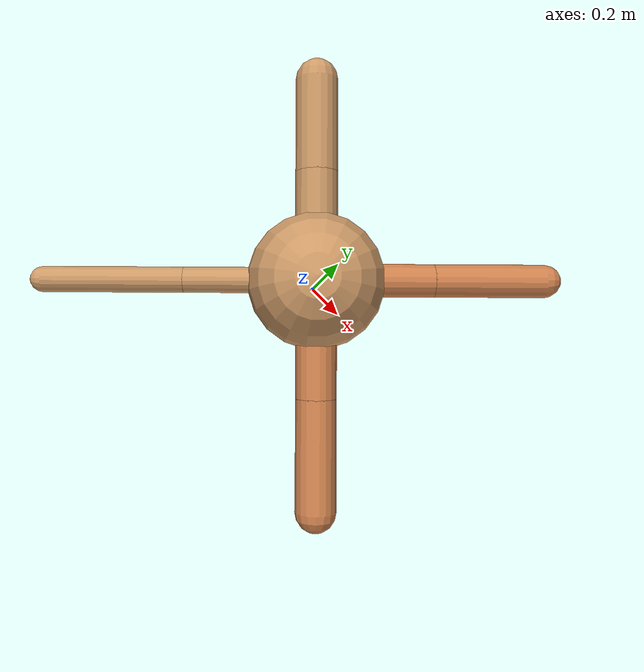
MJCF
<?xml version="1.0" ?>
<mujoco model="ant">

	<compiler angle="degree" coordinate="local" inertiafromgeom="true"/>

	<option integrator="RK4" timestep="0.01"/>

	<custom>

		<numeric data="0.0 0.0 0.55 1.0 0.0 0.0 0.0 0.0 1.0 0.0 -1.0 0.0 -1.0 0.0 1.0" name="init_qpos"/>

	</custom>

	<default>

		<joint armature="1" damping="1" limited="true"/>

		<geom conaffinity="0" condim="3" density="5.0" friction="1.5 0.1 0.1" margin="0.01" rgba="0.8 0.6 0.4 1"/>

	</default>

	<worldbody>

		<body name="torso" pos="0 0 0.75">

			<geom name="torso_geom" pos="0 0 0" size="0.31428872327884017" type="sphere"/>

			<!--joint armature="0" damping="0" limited="false" margin="0.01" name="root" pos="0 0 0" type="free"/-->

			<body name="front_left_leg" pos="0 0 0">

				<geom fromto="0 0 0 0.2 0.2 0" name="aux_1_geom" size="0.07536557796129388" type="capsule" rgba=".8 .5 .3 1"/>

				<body name="aux_1" pos="0.2 0.2 0">

					<joint axis="0 0 1" name="hip_1" pos="0.0 0.0 0.0" range="-40 40" type="hinge"/>

					<geom fromto="0 0 0 0.17592364803157864 0.17592364803157864 0" name="left_leg_geom" size="0.07536557796129388" type="capsule" rgba=".8 .5 .3 1"/>

					<body pos="0.17592364803157864 0.17592364803157864 0" name="front_left_foot">

						<joint axis="-1 1 0" name="ankle_1" pos="0.0 0.0 0.0" range="30 100" type="hinge"/>

						<geom fromto="0 0 0 0.3518472960631573 0.3518472960631573 0" name="left_ankle_geom" size="0.07536557796129388" type="capsule" rgba=".8 .5 .3 1"/>

					</body>

				</body>

			</body>

			<body name="front_right_leg" pos="0 0 0">

				<geom fromto="0 0 0 -0.2 0.2 0" name="aux_2_geom" size="0.09790132244015574" type="capsule"/>

				<body name="aux_2" pos="-0.2 0.2 0">

					<joint axis="0 0 1" name="hip_2" pos="0.0 0.0 0.0" range="-40 40" type="hinge"/>

					<geom fromto="0 0 0 -0.151101766580205 0.151101766580205 0" name="right_leg_geom" size="0.09790132244015574" type="capsule"/>

					<body pos="-0.151101766580205 0.151101766580205 0" name="front_right_foot">

						<joint axis="1 1 0" name="ankle_2" pos="0.0 0.0 0.0" range="-100 -30" type="hinge"/>

						<geom fromto="0 0 0 -0.30220353316041 0.30220353316041 0" name="right_ankle_geom" size="0.09790132244015574" type="capsule"/>

					</body>

				</body>

			</body>

			<body name="left_back_leg" pos="0 0 0">

				<geom fromto="0 0 0 -0.2 -0.2 0" name="aux_3_geom" size="0.05900505405097338" type="capsule"/>

				<body name="aux_3" pos="-0.2 -0.2 0">

					<joint axis="0 0 1" name="hip_3" pos="0.0 0.0 0.0" range="-40 40" type="hinge"/>

					<geom fromto="0 0 0 -0.22472647639626625 -0.22472647639626625 0" name="back_leg_geom" size="0.05900505405097338" type="capsule"/>

					<body pos="-0.22472647639626625 -0.22472647639626625 0" name="left_back_foot">

						<joint axis="-1 1 0" name="ankle_3" pos="0.0 0.0 0.0" range="-100 -30" type="hinge"/>

						<geom fromto="0 0 0 -0.4494529527925325 -0.4494529527925325 0" name="third_ankle_geom" size="0.05900505405097338" type="capsule"/>

					</body>

				</body>

			</body>

			<body name="right_back_leg" pos="0 0 0">

				<geom fromto="0 0 0 0.2 -0.2 0" name="aux_4_geom" size="0.09373255587828158" type="capsule" rgba=".8 .5 .3 1"/>

				<body name="aux_4" pos="0.2 -0.2 0">

					<joint axis="0 0 1" name="hip_4" pos="0.0 0.0 0.0" range="-40 40" type="hinge"/>

					<geom fromto="0 0 0 0.1772467502085606 -0.1772467502085606 0" name="rightback_leg_geom" size="0.09373255587828158" type="capsule" rgba=".8 .5 .3 1"/>

					<body pos="0.1772467502085606 -0.1772467502085606 0" name="right_back_foot">

						<joint axis="1 1 0" name="ankle_4" pos="0.0 0.0 0.0" range="30 100" type="hinge"/>

						<geom fromto="0 0 0 0.3544935004171212 -0.3544935004171212 0" name="fourth_ankle_geom" size="0.09373255587828158" type="capsule" rgba=".8 .5 .3 1"/>

					</body>

				</body>

			</body>

		</body>

	</worldbody>

	<actuator>

		<motor ctrllimited="true" ctrlrange="-1.0 1.0" joint="hip_4" gear="150"/>

		<motor ctrllimited="true" ctrlrange="-1.0 1.0" joint="ankle_4" gear="150"/>

		<motor ctrllimited="true" ctrlrange="-1.0 1.0" joint="hip_1" gear="150"/>

		<motor ctrllimited="true" ctrlrange="-1.0 1.0" joint="ankle_1" gear="150"/>

		<motor ctrllimited="true" ctrlrange="-1.0 1.0" joint="hip_2" gear="150"/>

		<motor ctrllimited="true" ctrlrange="-1.0 1.0" joint="ankle_2" gear="150"/>

		<motor ctrllimited="true" ctrlrange="-1.0 1.0" joint="hip_3" gear="150"/>

		<motor ctrllimited="true" ctrlrange="-1.0 1.0" joint="ankle_3" gear="150"/>

	</actuator>

</mujoco>
